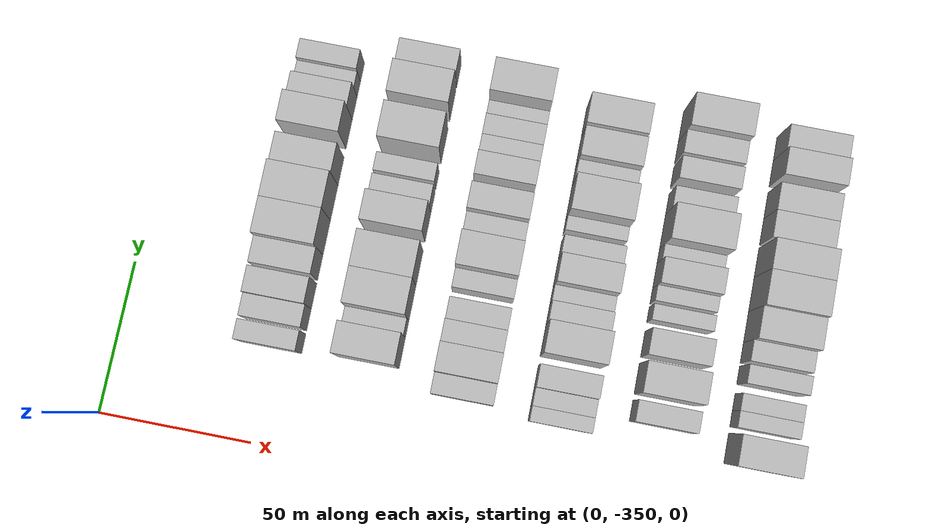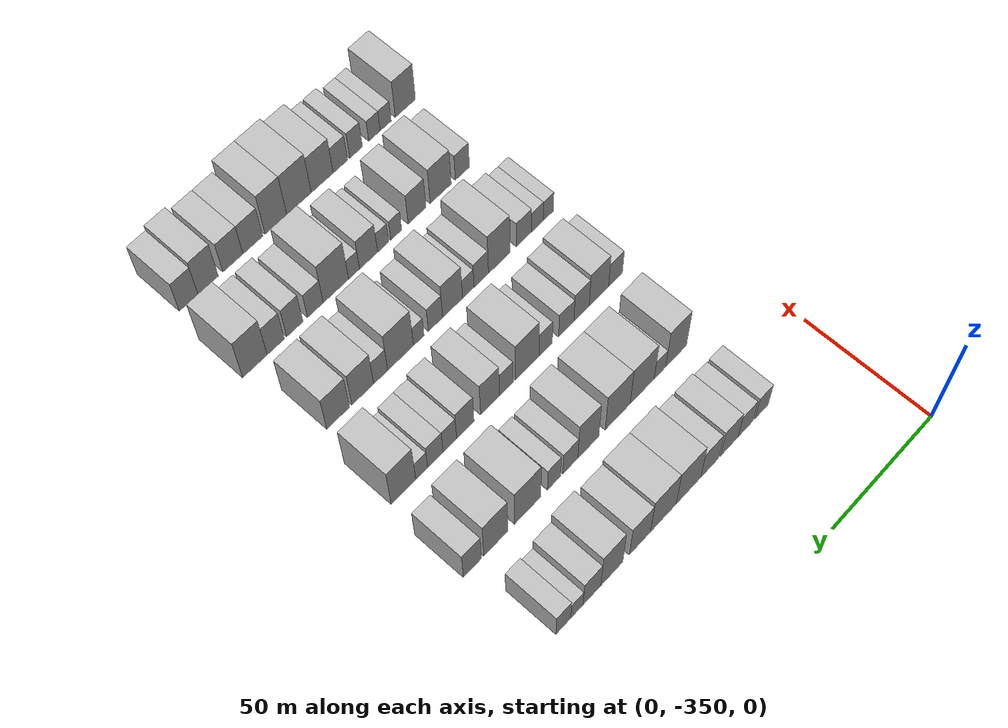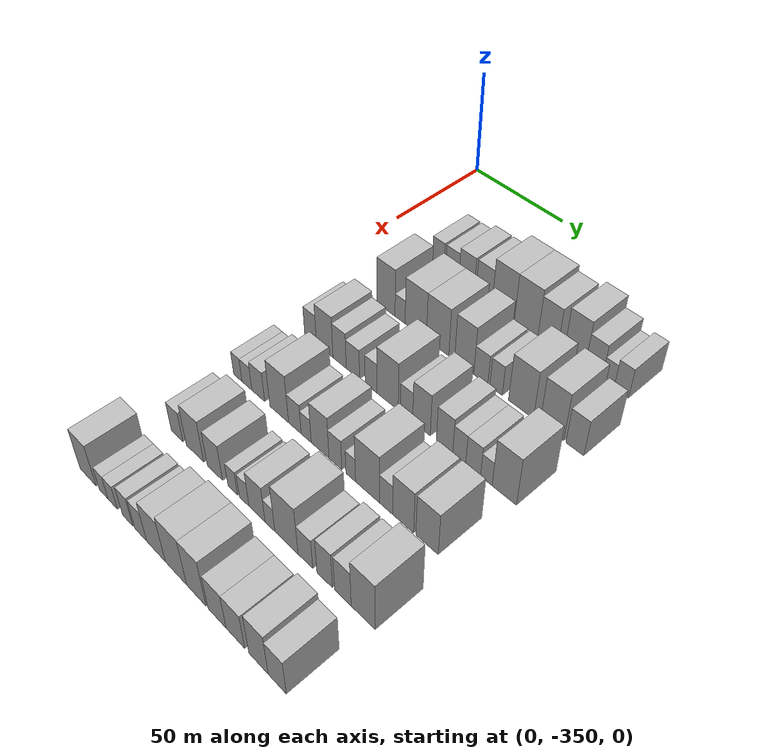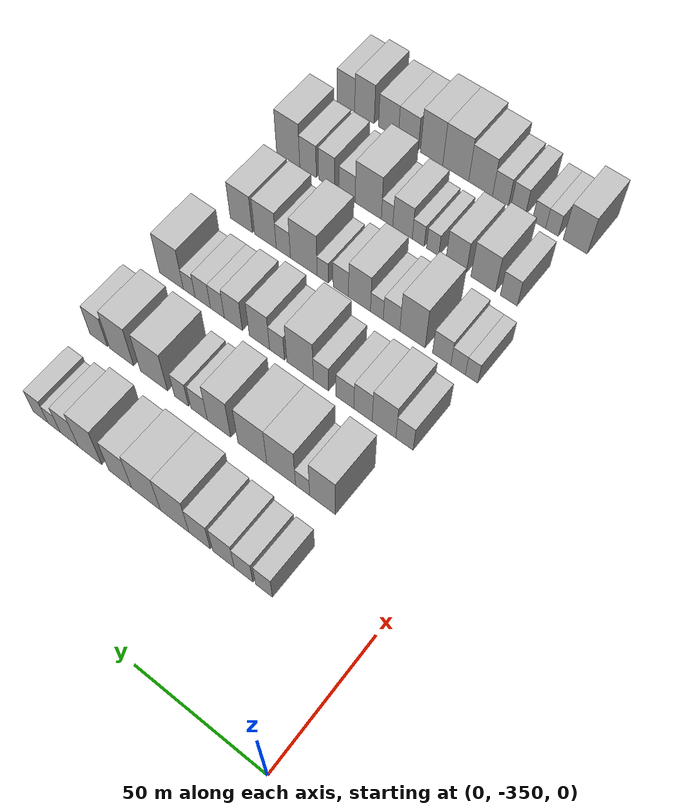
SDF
<sdf version="1.6">
 <world name="default">
  <model name="building_26">
   <static>1</static>
   <pose>50.0000 -315.5537 0 0.000000 0.000000 0.000000</pose>
   <link name="link">
    <pose>0 0 7.50 0 0 0</pose>
    <collision name="collision"><geometry><box><size>20.0000 6.5410 15.0000</size></box></geometry></collision>
    <visual name="visual">
     <cast_shadows>0</cast_shadows>
     <geometry><box><size>20.0000 6.5410 15.0000</size></box></geometry>
     <material>
      <script>
       <uri>model://HANNAS_wall/materials/scripts</uri>
       <uri>model://HANNAS_wall/materials/textures</uri>
       <name>vrc/HANNAS_wall</name>
      </script>
     </material>
    </visual>
   </link>
  </model>
  <model name="building_27">
   <static>1</static>
   <pose>50.0000 -307.6227 0 0.000000 0.000000 0.000000</pose>
   <link name="link">
    <pose>0 0 7.50 0 0 0</pose>
    <collision name="collision"><geometry><box><size>20.0000 7.3210 15.0000</size></box></geometry></collision>
    <visual name="visual">
     <cast_shadows>0</cast_shadows>
     <geometry><box><size>20.0000 7.3210 15.0000</size></box></geometry>
     <material>
      <script>
       <uri>model://HANNAS_wall/materials/scripts</uri>
       <uri>model://HANNAS_wall/materials/textures</uri>
       <name>vrc/HANNAS_wall</name>
      </script>
     </material>
    </visual>
   </link>
  </model>
  <model name="building_28">
   <static>1</static>
   <pose>50.0000 -299.7302 0 0.000000 0.000000 0.000000</pose>
   <link name="link">
    <pose>0 0 9.00 0 0 0</pose>
    <collision name="collision"><geometry><box><size>20.0000 8.4641 18.0000</size></box></geometry></collision>
    <visual name="visual">
     <cast_shadows>0</cast_shadows>
     <geometry><box><size>20.0000 8.4641 18.0000</size></box></geometry>
     <material>
      <script>
       <uri>model://HANNAS_wall/materials/scripts</uri>
       <uri>model://HANNAS_wall/materials/textures</uri>
       <name>vrc/HANNAS_wall</name>
      </script>
     </material>
    </visual>
   </link>
  </model>
  <model name="building_29">
   <static>1</static>
   <pose>50.0000 -290.2057 0 0.000000 0.000000 0.000000</pose>
   <link name="link">
    <pose>0 0 9.00 0 0 0</pose>
    <collision name="collision"><geometry><box><size>20.0000 8.5849 18.0000</size></box></geometry></collision>
    <visual name="visual">
     <cast_shadows>0</cast_shadows>
     <geometry><box><size>20.0000 8.5849 18.0000</size></box></geometry>
     <material>
      <script>
       <uri>model://HANNAS_wall/materials/scripts</uri>
       <uri>model://HANNAS_wall/materials/textures</uri>
       <name>vrc/HANNAS_wall</name>
      </script>
     </material>
    </visual>
   </link>
  </model>
  <model name="building_30">
   <static>1</static>
   <pose>50.0000 -280.0788 0 0.000000 0.000000 0.000000</pose>
   <link name="link">
    <pose>0 0 12.00 0 0 0</pose>
    <collision name="collision"><geometry><box><size>20.0000 11.6689 24.0000</size></box></geometry></collision>
    <visual name="visual">
     <cast_shadows>0</cast_shadows>
     <geometry><box><size>20.0000 11.6689 24.0000</size></box></geometry>
     <material>
      <script>
       <uri>model://HANNAS_wall/materials/scripts</uri>
       <uri>model://HANNAS_wall/materials/textures</uri>
       <name>vrc/HANNAS_wall</name>
      </script>
     </material>
    </visual>
   </link>
  </model>
  <model name="building_31">
   <static>1</static>
   <pose>50.0000 -268.2663 0 0.000000 0.000000 0.000000</pose>
   <link name="link">
    <pose>0 0 12.00 0 0 0</pose>
    <collision name="collision"><geometry><box><size>20.0000 11.9561 24.0000</size></box></geometry></collision>
    <visual name="visual">
     <cast_shadows>0</cast_shadows>
     <geometry><box><size>20.0000 11.9561 24.0000</size></box></geometry>
     <material>
      <script>
       <uri>model://HANNAS_wall/materials/scripts</uri>
       <uri>model://HANNAS_wall/materials/textures</uri>
       <name>vrc/HANNAS_wall</name>
      </script>
     </material>
    </visual>
   </link>
  </model>
  <model name="building_32">
   <static>1</static>
   <pose>50.0000 -257.4463 0 0.000000 0.000000 0.000000</pose>
   <link name="link">
    <pose>0 0 10.50 0 0 0</pose>
    <collision name="collision"><geometry><box><size>20.0000 9.6838 21.0000</size></box></geometry></collision>
    <visual name="visual">
     <cast_shadows>0</cast_shadows>
     <geometry><box><size>20.0000 9.6838 21.0000</size></box></geometry>
     <material>
      <script>
       <uri>model://HANNAS_wall/materials/scripts</uri>
       <uri>model://HANNAS_wall/materials/textures</uri>
       <name>vrc/HANNAS_wall</name>
      </script>
     </material>
    </visual>
   </link>
  </model>
  <model name="building_33">
   <static>1</static>
   <pose>50.0000 -244.5945 0 0.000000 0.000000 0.000000</pose>
   <link name="link">
    <pose>0 0 12.00 0 0 0</pose>
    <collision name="collision"><geometry><box><size>20.0000 10.0197 24.0000</size></box></geometry></collision>
    <visual name="visual">
     <cast_shadows>0</cast_shadows>
     <geometry><box><size>20.0000 10.0197 24.0000</size></box></geometry>
     <material>
      <script>
       <uri>model://HANNAS_wall/materials/scripts</uri>
       <uri>model://HANNAS_wall/materials/textures</uri>
       <name>vrc/HANNAS_wall</name>
      </script>
     </material>
    </visual>
   </link>
  </model>
  <model name="building_34">
   <static>1</static>
   <pose>50.0000 -235.6187 0 0.000000 0.000000 0.000000</pose>
   <link name="link">
    <pose>0 0 9.00 0 0 0</pose>
    <collision name="collision"><geometry><box><size>20.0000 7.9320 18.0000</size></box></geometry></collision>
    <visual name="visual">
     <cast_shadows>0</cast_shadows>
     <geometry><box><size>20.0000 7.9320 18.0000</size></box></geometry>
     <material>
      <script>
       <uri>model://HANNAS_wall/materials/scripts</uri>
       <uri>model://HANNAS_wall/materials/textures</uri>
       <name>vrc/HANNAS_wall</name>
      </script>
     </material>
    </visual>
   </link>
  </model>
  <model name="building_35">
   <static>1</static>
   <pose>50.0000 -228.9142 0 0.000000 0.000000 0.000000</pose>
   <link name="link">
    <pose>0 0 6.00 0 0 0</pose>
    <collision name="collision"><geometry><box><size>20.0000 5.4769 12.0000</size></box></geometry></collision>
    <visual name="visual">
     <cast_shadows>0</cast_shadows>
     <geometry><box><size>20.0000 5.4769 12.0000</size></box></geometry>
     <material>
      <script>
       <uri>model://HANNAS_wall/materials/scripts</uri>
       <uri>model://HANNAS_wall/materials/textures</uri>
       <name>vrc/HANNAS_wall</name>
      </script>
     </material>
    </visual>
   </link>
  </model>
  <model name="building_36">
   <static>1</static>
   <pose>50.0000 -222.9157 0 0.000000 0.000000 0.000000</pose>
   <link name="link">
    <pose>0 0 7.50 0 0 0</pose>
    <collision name="collision"><geometry><box><size>20.0000 6.5202 15.0000</size></box></geometry></collision>
    <visual name="visual">
     <cast_shadows>0</cast_shadows>
     <geometry><box><size>20.0000 6.5202 15.0000</size></box></geometry>
     <material>
      <script>
       <uri>model://HANNAS_wall/materials/scripts</uri>
       <uri>model://HANNAS_wall/materials/textures</uri>
       <name>vrc/HANNAS_wall</name>
      </script>
     </material>
    </visual>
   </link>
  </model>
  <model name="building_147">
   <static>1</static>
   <pose>82.0000 -312.4322 0 0.000000 0.000000 0.000000</pose>
   <link name="link">
    <pose>0 0 12.00 0 0 0</pose>
    <collision name="collision"><geometry><box><size>20.0000 10.1328 24.0000</size></box></geometry></collision>
    <visual name="visual">
     <cast_shadows>0</cast_shadows>
     <geometry><box><size>20.0000 10.1328 24.0000</size></box></geometry>
     <material>
      <script>
       <uri>model://HANNAS_wall/materials/scripts</uri>
       <uri>model://HANNAS_wall/materials/textures</uri>
       <name>vrc/HANNAS_wall</name>
      </script>
     </material>
    </visual>
   </link>
  </model>
  <model name="building_148">
   <static>1</static>
   <pose>82.0000 -304.5653 0 0.000000 0.000000 0.000000</pose>
   <link name="link">
    <pose>0 0 6.00 0 0 0</pose>
    <collision name="collision"><geometry><box><size>20.0000 5.6010 12.0000</size></box></geometry></collision>
    <visual name="visual">
     <cast_shadows>0</cast_shadows>
     <geometry><box><size>20.0000 5.6010 12.0000</size></box></geometry>
     <material>
      <script>
       <uri>model://HANNAS_wall/materials/scripts</uri>
       <uri>model://HANNAS_wall/materials/textures</uri>
       <name>vrc/HANNAS_wall</name>
      </script>
     </material>
    </visual>
   </link>
  </model>
  <model name="building_149">
   <static>1</static>
   <pose>82.0000 -295.9773 0 0.000000 0.000000 0.000000</pose>
   <link name="link">
    <pose>0 0 12.00 0 0 0</pose>
    <collision name="collision"><geometry><box><size>20.0000 11.5750 24.0000</size></box></geometry></collision>
    <visual name="visual">
     <cast_shadows>0</cast_shadows>
     <geometry><box><size>20.0000 11.5750 24.0000</size></box></geometry>
     <material>
      <script>
       <uri>model://HANNAS_wall/materials/scripts</uri>
       <uri>model://HANNAS_wall/materials/textures</uri>
       <name>vrc/HANNAS_wall</name>
      </script>
     </material>
    </visual>
   </link>
  </model>
  <model name="building_150">
   <static>1</static>
   <pose>82.0000 -284.2808 0 0.000000 0.000000 0.000000</pose>
   <link name="link">
    <pose>0 0 12.00 0 0 0</pose>
    <collision name="collision"><geometry><box><size>20.0000 11.8180 24.0000</size></box></geometry></collision>
    <visual name="visual">
     <cast_shadows>0</cast_shadows>
     <geometry><box><size>20.0000 11.8180 24.0000</size></box></geometry>
     <material>
      <script>
       <uri>model://HANNAS_wall/materials/scripts</uri>
       <uri>model://HANNAS_wall/materials/textures</uri>
       <name>vrc/HANNAS_wall</name>
      </script>
     </material>
    </visual>
   </link>
  </model>
  <model name="building_151">
   <static>1</static>
   <pose>82.0000 -270.4943 0 0.000000 0.000000 0.000000</pose>
   <link name="link">
    <pose>0 0 12.00 0 0 0</pose>
    <collision name="collision"><geometry><box><size>20.0000 9.7550 24.0000</size></box></geometry></collision>
    <visual name="visual">
     <cast_shadows>0</cast_shadows>
     <geometry><box><size>20.0000 9.7550 24.0000</size></box></geometry>
     <material>
      <script>
       <uri>model://HANNAS_wall/materials/scripts</uri>
       <uri>model://HANNAS_wall/materials/textures</uri>
       <name>vrc/HANNAS_wall</name>
      </script>
     </material>
    </visual>
   </link>
  </model>
  <model name="building_152">
   <static>1</static>
   <pose>82.0000 -262.1302 0 0.000000 0.000000 0.000000</pose>
   <link name="link">
    <pose>0 0 7.50 0 0 0</pose>
    <collision name="collision"><geometry><box><size>20.0000 6.9732 15.0000</size></box></geometry></collision>
    <visual name="visual">
     <cast_shadows>0</cast_shadows>
     <geometry><box><size>20.0000 6.9732 15.0000</size></box></geometry>
     <material>
      <script>
       <uri>model://HANNAS_wall/materials/scripts</uri>
       <uri>model://HANNAS_wall/materials/textures</uri>
       <name>vrc/HANNAS_wall</name>
      </script>
     </material>
    </visual>
   </link>
  </model>
  <model name="building_153">
   <static>1</static>
   <pose>82.0000 -254.6178 0 0.000000 0.000000 0.000000</pose>
   <link name="link">
    <pose>0 0 7.50 0 0 0</pose>
    <collision name="collision"><geometry><box><size>20.0000 6.0515 15.0000</size></box></geometry></collision>
    <visual name="visual">
     <cast_shadows>0</cast_shadows>
     <geometry><box><size>20.0000 6.0515 15.0000</size></box></geometry>
     <material>
      <script>
       <uri>model://HANNAS_wall/materials/scripts</uri>
       <uri>model://HANNAS_wall/materials/textures</uri>
       <name>vrc/HANNAS_wall</name>
      </script>
     </material>
    </visual>
   </link>
  </model>
  <model name="building_154">
   <static>1</static>
   <pose>82.0000 -242.6859 0 0.000000 0.000000 0.000000</pose>
   <link name="link">
    <pose>0 0 12.00 0 0 0</pose>
    <collision name="collision"><geometry><box><size>20.0000 11.8123 24.0000</size></box></geometry></collision>
    <visual name="visual">
     <cast_shadows>0</cast_shadows>
     <geometry><box><size>20.0000 11.8123 24.0000</size></box></geometry>
     <material>
      <script>
       <uri>model://HANNAS_wall/materials/scripts</uri>
       <uri>model://HANNAS_wall/materials/textures</uri>
       <name>vrc/HANNAS_wall</name>
      </script>
     </material>
    </visual>
   </link>
  </model>
  <model name="building_155">
   <static>1</static>
   <pose>82.0000 -228.4300 0 0.000000 0.000000 0.000000</pose>
   <link name="link">
    <pose>0 0 12.00 0 0 0</pose>
    <collision name="collision"><geometry><box><size>20.0000 10.6995 24.0000</size></box></geometry></collision>
    <visual name="visual">
     <cast_shadows>0</cast_shadows>
     <geometry><box><size>20.0000 10.6995 24.0000</size></box></geometry>
     <material>
      <script>
       <uri>model://HANNAS_wall/materials/scripts</uri>
       <uri>model://HANNAS_wall/materials/textures</uri>
       <name>vrc/HANNAS_wall</name>
      </script>
     </material>
    </visual>
   </link>
  </model>
  <model name="building_156">
   <static>1</static>
   <pose>82.0000 -218.1196 0 0.000000 0.000000 0.000000</pose>
   <link name="link">
    <pose>0 0 9.00 0 0 0</pose>
    <collision name="collision"><geometry><box><size>20.0000 7.9213 18.0000</size></box></geometry></collision>
    <visual name="visual">
     <cast_shadows>0</cast_shadows>
     <geometry><box><size>20.0000 7.9213 18.0000</size></box></geometry>
     <material>
      <script>
       <uri>model://HANNAS_wall/materials/scripts</uri>
       <uri>model://HANNAS_wall/materials/textures</uri>
       <name>vrc/HANNAS_wall</name>
      </script>
     </material>
    </visual>
   </link>
  </model>
  <model name="building_259">
   <static>1</static>
   <pose>114.0000 -320.1308 0 0.000000 0.000000 0.000000</pose>
   <link name="link">
    <pose>0 0 7.50 0 0 0</pose>
    <collision name="collision"><geometry><box><size>20.0000 6.7972 15.0000</size></box></geometry></collision>
    <visual name="visual">
     <cast_shadows>0</cast_shadows>
     <geometry><box><size>20.0000 6.7972 15.0000</size></box></geometry>
     <material>
      <script>
       <uri>model://HANNAS_wall/materials/scripts</uri>
       <uri>model://HANNAS_wall/materials/textures</uri>
       <name>vrc/HANNAS_wall</name>
      </script>
     </material>
    </visual>
   </link>
  </model>
  <model name="building_260">
   <static>1</static>
   <pose>114.0000 -312.0035 0 0.000000 0.000000 0.000000</pose>
   <link name="link">
    <pose>0 0 10.50 0 0 0</pose>
    <collision name="collision"><geometry><box><size>20.0000 9.4574 21.0000</size></box></geometry></collision>
    <visual name="visual">
     <cast_shadows>0</cast_shadows>
     <geometry><box><size>20.0000 9.4574 21.0000</size></box></geometry>
     <material>
      <script>
       <uri>model://HANNAS_wall/materials/scripts</uri>
       <uri>model://HANNAS_wall/materials/textures</uri>
       <name>vrc/HANNAS_wall</name>
      </script>
     </material>
    </visual>
   </link>
  </model>
  <model name="building_261">
   <static>1</static>
   <pose>114.0000 -303.6046 0 0.000000 0.000000 0.000000</pose>
   <link name="link">
    <pose>0 0 9.00 0 0 0</pose>
    <collision name="collision"><geometry><box><size>20.0000 7.3402 18.0000</size></box></geometry></collision>
    <visual name="visual">
     <cast_shadows>0</cast_shadows>
     <geometry><box><size>20.0000 7.3402 18.0000</size></box></geometry>
     <material>
      <script>
       <uri>model://HANNAS_wall/materials/scripts</uri>
       <uri>model://HANNAS_wall/materials/textures</uri>
       <name>vrc/HANNAS_wall</name>
      </script>
     </material>
    </visual>
   </link>
  </model>
  <model name="building_262">
   <static>1</static>
   <pose>114.0000 -296.2754 0 0.000000 0.000000 0.000000</pose>
   <link name="link">
    <pose>0 0 7.50 0 0 0</pose>
    <collision name="collision"><geometry><box><size>20.0000 7.3182 15.0000</size></box></geometry></collision>
    <visual name="visual">
     <cast_shadows>0</cast_shadows>
     <geometry><box><size>20.0000 7.3182 15.0000</size></box></geometry>
     <material>
      <script>
       <uri>model://HANNAS_wall/materials/scripts</uri>
       <uri>model://HANNAS_wall/materials/textures</uri>
       <name>vrc/HANNAS_wall</name>
      </script>
     </material>
    </visual>
   </link>
  </model>
  <model name="building_263">
   <static>1</static>
   <pose>114.0000 -286.4926 0 0.000000 0.000000 0.000000</pose>
   <link name="link">
    <pose>0 0 7.50 0 0 0</pose>
    <collision name="collision"><geometry><box><size>20.0000 6.2475 15.0000</size></box></geometry></collision>
    <visual name="visual">
     <cast_shadows>0</cast_shadows>
     <geometry><box><size>20.0000 6.2475 15.0000</size></box></geometry>
     <material>
      <script>
       <uri>model://HANNAS_wall/materials/scripts</uri>
       <uri>model://HANNAS_wall/materials/textures</uri>
       <name>vrc/HANNAS_wall</name>
      </script>
     </material>
    </visual>
   </link>
  </model>
  <model name="building_264">
   <static>1</static>
   <pose>114.0000 -277.8136 0 0.000000 0.000000 0.000000</pose>
   <link name="link">
    <pose>0 0 12.00 0 0 0</pose>
    <collision name="collision"><geometry><box><size>20.0000 11.1104 24.0000</size></box></geometry></collision>
    <visual name="visual">
     <cast_shadows>0</cast_shadows>
     <geometry><box><size>20.0000 11.1104 24.0000</size></box></geometry>
     <material>
      <script>
       <uri>model://HANNAS_wall/materials/scripts</uri>
       <uri>model://HANNAS_wall/materials/textures</uri>
       <name>vrc/HANNAS_wall</name>
      </script>
     </material>
    </visual>
   </link>
  </model>
  <model name="building_265">
   <static>1</static>
   <pose>114.0000 -268.0980 0 0.000000 0.000000 0.000000</pose>
   <link name="link">
    <pose>0 0 7.50 0 0 0</pose>
    <collision name="collision"><geometry><box><size>20.0000 6.3209 15.0000</size></box></geometry></collision>
    <visual name="visual">
     <cast_shadows>0</cast_shadows>
     <geometry><box><size>20.0000 6.3209 15.0000</size></box></geometry>
     <material>
      <script>
       <uri>model://HANNAS_wall/materials/scripts</uri>
       <uri>model://HANNAS_wall/materials/textures</uri>
       <name>vrc/HANNAS_wall</name>
      </script>
     </material>
    </visual>
   </link>
  </model>
  <model name="building_266">
   <static>1</static>
   <pose>114.0000 -260.5856 0 0.000000 0.000000 0.000000</pose>
   <link name="link">
    <pose>0 0 10.50 0 0 0</pose>
    <collision name="collision"><geometry><box><size>20.0000 8.7037 21.0000</size></box></geometry></collision>
    <visual name="visual">
     <cast_shadows>0</cast_shadows>
     <geometry><box><size>20.0000 8.7037 21.0000</size></box></geometry>
     <material>
      <script>
       <uri>model://HANNAS_wall/materials/scripts</uri>
       <uri>model://HANNAS_wall/materials/textures</uri>
       <name>vrc/HANNAS_wall</name>
      </script>
     </material>
    </visual>
   </link>
  </model>
  <model name="building_267">
   <static>1</static>
   <pose>114.0000 -249.3025 0 0.000000 0.000000 0.000000</pose>
   <link name="link">
    <pose>0 0 9.00 0 0 0</pose>
    <collision name="collision"><geometry><box><size>20.0000 7.8626 18.0000</size></box></geometry></collision>
    <visual name="visual">
     <cast_shadows>0</cast_shadows>
     <geometry><box><size>20.0000 7.8626 18.0000</size></box></geometry>
     <material>
      <script>
       <uri>model://HANNAS_wall/materials/scripts</uri>
       <uri>model://HANNAS_wall/materials/textures</uri>
       <name>vrc/HANNAS_wall</name>
      </script>
     </material>
    </visual>
   </link>
  </model>
  <model name="building_268">
   <static>1</static>
   <pose>114.0000 -242.3262 0 0.000000 0.000000 0.000000</pose>
   <link name="link">
    <pose>0 0 7.50 0 0 0</pose>
    <collision name="collision"><geometry><box><size>20.0000 6.0900 15.0000</size></box></geometry></collision>
    <visual name="visual">
     <cast_shadows>0</cast_shadows>
     <geometry><box><size>20.0000 6.0900 15.0000</size></box></geometry>
     <material>
      <script>
       <uri>model://HANNAS_wall/materials/scripts</uri>
       <uri>model://HANNAS_wall/materials/textures</uri>
       <name>vrc/HANNAS_wall</name>
      </script>
     </material>
    </visual>
   </link>
  </model>
  <model name="building_269">
   <static>1</static>
   <pose>114.0000 -235.8635 0 0.000000 0.000000 0.000000</pose>
   <link name="link">
    <pose>0 0 7.50 0 0 0</pose>
    <collision name="collision"><geometry><box><size>20.0000 6.8353 15.0000</size></box></geometry></collision>
    <visual name="visual">
     <cast_shadows>0</cast_shadows>
     <geometry><box><size>20.0000 6.8353 15.0000</size></box></geometry>
     <material>
      <script>
       <uri>model://HANNAS_wall/materials/scripts</uri>
       <uri>model://HANNAS_wall/materials/textures</uri>
       <name>vrc/HANNAS_wall</name>
      </script>
     </material>
    </visual>
   </link>
  </model>
  <model name="building_270">
   <static>1</static>
   <pose>114.0000 -229.8049 0 0.000000 0.000000 0.000000</pose>
   <link name="link">
    <pose>0 0 6.00 0 0 0</pose>
    <collision name="collision"><geometry><box><size>20.0000 5.2819 12.0000</size></box></geometry></collision>
    <visual name="visual">
     <cast_shadows>0</cast_shadows>
     <geometry><box><size>20.0000 5.2819 12.0000</size></box></geometry>
     <material>
      <script>
       <uri>model://HANNAS_wall/materials/scripts</uri>
       <uri>model://HANNAS_wall/materials/textures</uri>
       <name>vrc/HANNAS_wall</name>
      </script>
     </material>
    </visual>
   </link>
  </model>
  <model name="building_271">
   <static>1</static>
   <pose>114.0000 -221.7602 0 0.000000 0.000000 0.000000</pose>
   <link name="link">
    <pose>0 0 12.00 0 0 0</pose>
    <collision name="collision"><geometry><box><size>20.0000 10.8076 24.0000</size></box></geometry></collision>
    <visual name="visual">
     <cast_shadows>0</cast_shadows>
     <geometry><box><size>20.0000 10.8076 24.0000</size></box></geometry>
     <material>
      <script>
       <uri>model://HANNAS_wall/materials/scripts</uri>
       <uri>model://HANNAS_wall/materials/textures</uri>
       <name>vrc/HANNAS_wall</name>
      </script>
     </material>
    </visual>
   </link>
  </model>
  <model name="building_380">
   <static>1</static>
   <pose>146.0000 -323.5174 0 0.000000 0.000000 0.000000</pose>
   <link name="link">
    <pose>0 0 6.00 0 0 0</pose>
    <collision name="collision"><geometry><box><size>20.0000 4.9330 12.0000</size></box></geometry></collision>
    <visual name="visual">
     <cast_shadows>0</cast_shadows>
     <geometry><box><size>20.0000 4.9330 12.0000</size></box></geometry>
     <material>
      <script>
       <uri>model://HANNAS_wall/materials/scripts</uri>
       <uri>model://HANNAS_wall/materials/textures</uri>
       <name>vrc/HANNAS_wall</name>
      </script>
     </material>
    </visual>
   </link>
  </model>
  <model name="building_381">
   <static>1</static>
   <pose>146.0000 -318.1522 0 0.000000 0.000000 0.000000</pose>
   <link name="link">
    <pose>0 0 6.00 0 0 0</pose>
    <collision name="collision"><geometry><box><size>20.0000 5.7976 12.0000</size></box></geometry></collision>
    <visual name="visual">
     <cast_shadows>0</cast_shadows>
     <geometry><box><size>20.0000 5.7976 12.0000</size></box></geometry>
     <material>
      <script>
       <uri>model://HANNAS_wall/materials/scripts</uri>
       <uri>model://HANNAS_wall/materials/textures</uri>
       <name>vrc/HANNAS_wall</name>
      </script>
     </material>
    </visual>
   </link>
  </model>
  <model name="building_382">
   <static>1</static>
   <pose>146.0000 -311.5566 0 0.000000 0.000000 0.000000</pose>
   <link name="link">
    <pose>0 0 7.50 0 0 0</pose>
    <collision name="collision"><geometry><box><size>20.0000 7.3936 15.0000</size></box></geometry></collision>
    <visual name="visual">
     <cast_shadows>0</cast_shadows>
     <geometry><box><size>20.0000 7.3936 15.0000</size></box></geometry>
     <material>
      <script>
       <uri>model://HANNAS_wall/materials/scripts</uri>
       <uri>model://HANNAS_wall/materials/textures</uri>
       <name>vrc/HANNAS_wall</name>
      </script>
     </material>
    </visual>
   </link>
  </model>
  <model name="building_383">
   <static>1</static>
   <pose>146.0000 -299.6674 0 0.000000 0.000000 0.000000</pose>
   <link name="link">
    <pose>0 0 12.00 0 0 0</pose>
    <collision name="collision"><geometry><box><size>20.0000 10.3847 24.0000</size></box></geometry></collision>
    <visual name="visual">
     <cast_shadows>0</cast_shadows>
     <geometry><box><size>20.0000 10.3847 24.0000</size></box></geometry>
     <material>
      <script>
       <uri>model://HANNAS_wall/materials/scripts</uri>
       <uri>model://HANNAS_wall/materials/textures</uri>
       <name>vrc/HANNAS_wall</name>
      </script>
     </material>
    </visual>
   </link>
  </model>
  <model name="building_384">
   <static>1</static>
   <pose>146.0000 -291.0367 0 0.000000 0.000000 0.000000</pose>
   <link name="link">
    <pose>0 0 7.50 0 0 0</pose>
    <collision name="collision"><geometry><box><size>20.0000 6.8768 15.0000</size></box></geometry></collision>
    <visual name="visual">
     <cast_shadows>0</cast_shadows>
     <geometry><box><size>20.0000 6.8768 15.0000</size></box></geometry>
     <material>
      <script>
       <uri>model://HANNAS_wall/materials/scripts</uri>
       <uri>model://HANNAS_wall/materials/textures</uri>
       <name>vrc/HANNAS_wall</name>
      </script>
     </material>
    </visual>
   </link>
  </model>
  <model name="building_385">
   <static>1</static>
   <pose>146.0000 -284.9132 0 0.000000 0.000000 0.000000</pose>
   <link name="link">
    <pose>0 0 6.00 0 0 0</pose>
    <collision name="collision"><geometry><box><size>20.0000 5.3702 12.0000</size></box></geometry></collision>
    <visual name="visual">
     <cast_shadows>0</cast_shadows>
     <geometry><box><size>20.0000 5.3702 12.0000</size></box></geometry>
     <material>
      <script>
       <uri>model://HANNAS_wall/materials/scripts</uri>
       <uri>model://HANNAS_wall/materials/textures</uri>
       <name>vrc/HANNAS_wall</name>
      </script>
     </material>
    </visual>
   </link>
  </model>
  <model name="building_386">
   <static>1</static>
   <pose>146.0000 -277.5852 0 0.000000 0.000000 0.000000</pose>
   <link name="link">
    <pose>0 0 10.50 0 0 0</pose>
    <collision name="collision"><geometry><box><size>20.0000 9.2857 21.0000</size></box></geometry></collision>
    <visual name="visual">
     <cast_shadows>0</cast_shadows>
     <geometry><box><size>20.0000 9.2857 21.0000</size></box></geometry>
     <material>
      <script>
       <uri>model://HANNAS_wall/materials/scripts</uri>
       <uri>model://HANNAS_wall/materials/textures</uri>
       <name>vrc/HANNAS_wall</name>
      </script>
     </material>
    </visual>
   </link>
  </model>
  <model name="building_387">
   <static>1</static>
   <pose>146.0000 -269.6390 0 0.000000 0.000000 0.000000</pose>
   <link name="link">
    <pose>0 0 7.50 0 0 0</pose>
    <collision name="collision"><geometry><box><size>20.0000 6.6068 15.0000</size></box></geometry></collision>
    <visual name="visual">
     <cast_shadows>0</cast_shadows>
     <geometry><box><size>20.0000 6.6068 15.0000</size></box></geometry>
     <material>
      <script>
       <uri>model://HANNAS_wall/materials/scripts</uri>
       <uri>model://HANNAS_wall/materials/textures</uri>
       <name>vrc/HANNAS_wall</name>
      </script>
     </material>
    </visual>
   </link>
  </model>
  <model name="building_388">
   <static>1</static>
   <pose>146.0000 -261.9287 0 0.000000 0.000000 0.000000</pose>
   <link name="link">
    <pose>0 0 6.00 0 0 0</pose>
    <collision name="collision"><geometry><box><size>20.0000 4.8138 12.0000</size></box></geometry></collision>
    <visual name="visual">
     <cast_shadows>0</cast_shadows>
     <geometry><box><size>20.0000 4.8138 12.0000</size></box></geometry>
     <material>
      <script>
       <uri>model://HANNAS_wall/materials/scripts</uri>
       <uri>model://HANNAS_wall/materials/textures</uri>
       <name>vrc/HANNAS_wall</name>
      </script>
     </material>
    </visual>
   </link>
  </model>
  <model name="building_389">
   <static>1</static>
   <pose>146.0000 -253.6525 0 0.000000 0.000000 0.000000</pose>
   <link name="link">
    <pose>0 0 12.00 0 0 0</pose>
    <collision name="collision"><geometry><box><size>20.0000 11.7385 24.0000</size></box></geometry></collision>
    <visual name="visual">
     <cast_shadows>0</cast_shadows>
     <geometry><box><size>20.0000 11.7385 24.0000</size></box></geometry>
     <material>
      <script>
       <uri>model://HANNAS_wall/materials/scripts</uri>
       <uri>model://HANNAS_wall/materials/textures</uri>
       <name>vrc/HANNAS_wall</name>
      </script>
     </material>
    </visual>
   </link>
  </model>
  <model name="building_390">
   <static>1</static>
   <pose>146.0000 -244.6419 0 0.000000 0.000000 0.000000</pose>
   <link name="link">
    <pose>0 0 7.50 0 0 0</pose>
    <collision name="collision"><geometry><box><size>20.0000 6.2828 15.0000</size></box></geometry></collision>
    <visual name="visual">
     <cast_shadows>0</cast_shadows>
     <geometry><box><size>20.0000 6.2828 15.0000</size></box></geometry>
     <material>
      <script>
       <uri>model://HANNAS_wall/materials/scripts</uri>
       <uri>model://HANNAS_wall/materials/textures</uri>
       <name>vrc/HANNAS_wall</name>
      </script>
     </material>
    </visual>
   </link>
  </model>
  <model name="building_391">
   <static>1</static>
   <pose>146.0000 -236.6461 0 0.000000 0.000000 0.000000</pose>
   <link name="link">
    <pose>0 0 10.50 0 0 0</pose>
    <collision name="collision"><geometry><box><size>20.0000 9.7087 21.0000</size></box></geometry></collision>
    <visual name="visual">
     <cast_shadows>0</cast_shadows>
     <geometry><box><size>20.0000 9.7087 21.0000</size></box></geometry>
     <material>
      <script>
       <uri>model://HANNAS_wall/materials/scripts</uri>
       <uri>model://HANNAS_wall/materials/textures</uri>
       <name>vrc/HANNAS_wall</name>
      </script>
     </material>
    </visual>
   </link>
  </model>
  <model name="building_392">
   <static>1</static>
   <pose>146.0000 -225.7712 0 0.000000 0.000000 0.000000</pose>
   <link name="link">
    <pose>0 0 10.50 0 0 0</pose>
    <collision name="collision"><geometry><box><size>20.0000 10.0412 21.0000</size></box></geometry></collision>
    <visual name="visual">
     <cast_shadows>0</cast_shadows>
     <geometry><box><size>20.0000 10.0412 21.0000</size></box></geometry>
     <material>
      <script>
       <uri>model://HANNAS_wall/materials/scripts</uri>
       <uri>model://HANNAS_wall/materials/textures</uri>
       <name>vrc/HANNAS_wall</name>
      </script>
     </material>
    </visual>
   </link>
  </model>
  <model name="building_500">
   <static>1</static>
   <pose>178.0000 -316.3403 0 0.000000 0.000000 0.000000</pose>
   <link name="link">
    <pose>0 0 7.50 0 0 0</pose>
    <collision name="collision"><geometry><box><size>20.0000 6.8605 15.0000</size></box></geometry></collision>
    <visual name="visual">
     <cast_shadows>0</cast_shadows>
     <geometry><box><size>20.0000 6.8605 15.0000</size></box></geometry>
     <material>
      <script>
       <uri>model://HANNAS_wall/materials/scripts</uri>
       <uri>model://HANNAS_wall/materials/textures</uri>
       <name>vrc/HANNAS_wall</name>
      </script>
     </material>
    </visual>
   </link>
  </model>
  <model name="building_501">
   <static>1</static>
   <pose>178.0000 -305.8639 0 0.000000 0.000000 0.000000</pose>
   <link name="link">
    <pose>0 0 10.50 0 0 0</pose>
    <collision name="collision"><geometry><box><size>20.0000 10.0923 21.0000</size></box></geometry></collision>
    <visual name="visual">
     <cast_shadows>0</cast_shadows>
     <geometry><box><size>20.0000 10.0923 21.0000</size></box></geometry>
     <material>
      <script>
       <uri>model://HANNAS_wall/materials/scripts</uri>
       <uri>model://HANNAS_wall/materials/textures</uri>
       <name>vrc/HANNAS_wall</name>
      </script>
     </material>
    </visual>
   </link>
  </model>
  <model name="building_502">
   <static>1</static>
   <pose>178.0000 -294.5640 0 0.000000 0.000000 0.000000</pose>
   <link name="link">
    <pose>0 0 9.00 0 0 0</pose>
    <collision name="collision"><geometry><box><size>20.0000 8.5076 18.0000</size></box></geometry></collision>
    <visual name="visual">
     <cast_shadows>0</cast_shadows>
     <geometry><box><size>20.0000 8.5076 18.0000</size></box></geometry>
     <material>
      <script>
       <uri>model://HANNAS_wall/materials/scripts</uri>
       <uri>model://HANNAS_wall/materials/textures</uri>
       <name>vrc/HANNAS_wall</name>
      </script>
     </material>
    </visual>
   </link>
  </model>
  <model name="building_503">
   <static>1</static>
   <pose>178.0000 -284.7288 0 0.000000 0.000000 0.000000</pose>
   <link name="link">
    <pose>0 0 6.00 0 0 0</pose>
    <collision name="collision"><geometry><box><size>20.0000 5.1629 12.0000</size></box></geometry></collision>
    <visual name="visual">
     <cast_shadows>0</cast_shadows>
     <geometry><box><size>20.0000 5.1629 12.0000</size></box></geometry>
     <material>
      <script>
       <uri>model://HANNAS_wall/materials/scripts</uri>
       <uri>model://HANNAS_wall/materials/textures</uri>
       <name>vrc/HANNAS_wall</name>
      </script>
     </material>
    </visual>
   </link>
  </model>
  <model name="building_504">
   <static>1</static>
   <pose>178.0000 -278.5948 0 0.000000 0.000000 0.000000</pose>
   <link name="link">
    <pose>0 0 6.00 0 0 0</pose>
    <collision name="collision"><geometry><box><size>20.0000 5.1050 12.0000</size></box></geometry></collision>
    <visual name="visual">
     <cast_shadows>0</cast_shadows>
     <geometry><box><size>20.0000 5.1050 12.0000</size></box></geometry>
     <material>
      <script>
       <uri>model://HANNAS_wall/materials/scripts</uri>
       <uri>model://HANNAS_wall/materials/textures</uri>
       <name>vrc/HANNAS_wall</name>
      </script>
     </material>
    </visual>
   </link>
  </model>
  <model name="building_505">
   <static>1</static>
   <pose>178.0000 -271.8500 0 0.000000 0.000000 0.000000</pose>
   <link name="link">
    <pose>0 0 9.00 0 0 0</pose>
    <collision name="collision"><geometry><box><size>20.0000 8.3847 18.0000</size></box></geometry></collision>
    <visual name="visual">
     <cast_shadows>0</cast_shadows>
     <geometry><box><size>20.0000 8.3847 18.0000</size></box></geometry>
     <material>
      <script>
       <uri>model://HANNAS_wall/materials/scripts</uri>
       <uri>model://HANNAS_wall/materials/textures</uri>
       <name>vrc/HANNAS_wall</name>
      </script>
     </material>
    </visual>
   </link>
  </model>
  <model name="building_506">
   <static>1</static>
   <pose>178.0000 -265.1511 0 0.000000 0.000000 0.000000</pose>
   <link name="link">
    <pose>0 0 6.00 0 0 0</pose>
    <collision name="collision"><geometry><box><size>20.0000 5.0131 12.0000</size></box></geometry></collision>
    <visual name="visual">
     <cast_shadows>0</cast_shadows>
     <geometry><box><size>20.0000 5.0131 12.0000</size></box></geometry>
     <material>
      <script>
       <uri>model://HANNAS_wall/materials/scripts</uri>
       <uri>model://HANNAS_wall/materials/textures</uri>
       <name>vrc/HANNAS_wall</name>
      </script>
     </material>
    </visual>
   </link>
  </model>
  <model name="building_507">
   <static>1</static>
   <pose>178.0000 -256.8852 0 0.000000 0.000000 0.000000</pose>
   <link name="link">
    <pose>0 0 12.00 0 0 0</pose>
    <collision name="collision"><geometry><box><size>20.0000 11.5188 24.0000</size></box></geometry></collision>
    <visual name="visual">
     <cast_shadows>0</cast_shadows>
     <geometry><box><size>20.0000 11.5188 24.0000</size></box></geometry>
     <material>
      <script>
       <uri>model://HANNAS_wall/materials/scripts</uri>
       <uri>model://HANNAS_wall/materials/textures</uri>
       <name>vrc/HANNAS_wall</name>
      </script>
     </material>
    </visual>
   </link>
  </model>
  <model name="building_508">
   <static>1</static>
   <pose>178.0000 -247.5629 0 0.000000 0.000000 0.000000</pose>
   <link name="link">
    <pose>0 0 7.50 0 0 0</pose>
    <collision name="collision"><geometry><box><size>20.0000 7.1257 15.0000</size></box></geometry></collision>
    <visual name="visual">
     <cast_shadows>0</cast_shadows>
     <geometry><box><size>20.0000 7.1257 15.0000</size></box></geometry>
     <material>
      <script>
       <uri>model://HANNAS_wall/materials/scripts</uri>
       <uri>model://HANNAS_wall/materials/textures</uri>
       <name>vrc/HANNAS_wall</name>
      </script>
     </material>
    </visual>
   </link>
  </model>
  <model name="building_509">
   <static>1</static>
   <pose>178.0000 -238.3629 0 0.000000 0.000000 0.000000</pose>
   <link name="link">
    <pose>0 0 9.00 0 0 0</pose>
    <collision name="collision"><geometry><box><size>20.0000 7.2742 18.0000</size></box></geometry></collision>
    <visual name="visual">
     <cast_shadows>0</cast_shadows>
     <geometry><box><size>20.0000 7.2742 18.0000</size></box></geometry>
     <material>
      <script>
       <uri>model://HANNAS_wall/materials/scripts</uri>
       <uri>model://HANNAS_wall/materials/textures</uri>
       <name>vrc/HANNAS_wall</name>
      </script>
     </material>
    </visual>
   </link>
  </model>
  <model name="building_510">
   <static>1</static>
   <pose>178.0000 -229.9313 0 0.000000 0.000000 0.000000</pose>
   <link name="link">
    <pose>0 0 9.00 0 0 0</pose>
    <collision name="collision"><geometry><box><size>20.0000 7.5891 18.0000</size></box></geometry></collision>
    <visual name="visual">
     <cast_shadows>0</cast_shadows>
     <geometry><box><size>20.0000 7.5891 18.0000</size></box></geometry>
     <material>
      <script>
       <uri>model://HANNAS_wall/materials/scripts</uri>
       <uri>model://HANNAS_wall/materials/textures</uri>
       <name>vrc/HANNAS_wall</name>
      </script>
     </material>
    </visual>
   </link>
  </model>
  <model name="building_511">
   <static>1</static>
   <pose>178.0000 -220.7834 0 0.000000 0.000000 0.000000</pose>
   <link name="link">
    <pose>0 0 12.00 0 0 0</pose>
    <collision name="collision"><geometry><box><size>20.0000 10.7067 24.0000</size></box></geometry></collision>
    <visual name="visual">
     <cast_shadows>0</cast_shadows>
     <geometry><box><size>20.0000 10.7067 24.0000</size></box></geometry>
     <material>
      <script>
       <uri>model://HANNAS_wall/materials/scripts</uri>
       <uri>model://HANNAS_wall/materials/textures</uri>
       <name>vrc/HANNAS_wall</name>
      </script>
     </material>
    </visual>
   </link>
  </model>
  <model name="building_619">
   <static>1</static>
   <pose>210.0000 -322.2235 0 0.000000 0.000000 0.000000</pose>
   <link name="link">
    <pose>0 0 10.50 0 0 0</pose>
    <collision name="collision"><geometry><box><size>20.0000 9.8268 21.0000</size></box></geometry></collision>
    <visual name="visual">
     <cast_shadows>0</cast_shadows>
     <geometry><box><size>20.0000 9.8268 21.0000</size></box></geometry>
     <material>
      <script>
       <uri>model://HANNAS_wall/materials/scripts</uri>
       <uri>model://HANNAS_wall/materials/textures</uri>
       <name>vrc/HANNAS_wall</name>
      </script>
     </material>
    </visual>
   </link>
  </model>
  <model name="building_620">
   <static>1</static>
   <pose>210.0000 -312.6661 0 0.000000 0.000000 0.000000</pose>
   <link name="link">
    <pose>0 0 6.00 0 0 0</pose>
    <collision name="collision"><geometry><box><size>20.0000 5.2880 12.0000</size></box></geometry></collision>
    <visual name="visual">
     <cast_shadows>0</cast_shadows>
     <geometry><box><size>20.0000 5.2880 12.0000</size></box></geometry>
     <material>
      <script>
       <uri>model://HANNAS_wall/materials/scripts</uri>
       <uri>model://HANNAS_wall/materials/textures</uri>
       <name>vrc/HANNAS_wall</name>
      </script>
     </material>
    </visual>
   </link>
  </model>
  <model name="building_621">
   <static>1</static>
   <pose>210.0000 -307.2638 0 0.000000 0.000000 0.000000</pose>
   <link name="link">
    <pose>0 0 6.00 0 0 0</pose>
    <collision name="collision"><geometry><box><size>20.0000 5.5166 12.0000</size></box></geometry></collision>
    <visual name="visual">
     <cast_shadows>0</cast_shadows>
     <geometry><box><size>20.0000 5.5166 12.0000</size></box></geometry>
     <material>
      <script>
       <uri>model://HANNAS_wall/materials/scripts</uri>
       <uri>model://HANNAS_wall/materials/textures</uri>
       <name>vrc/HANNAS_wall</name>
      </script>
     </material>
    </visual>
   </link>
  </model>
  <model name="building_622">
   <static>1</static>
   <pose>210.0000 -298.4811 0 0.000000 0.000000 0.000000</pose>
   <link name="link">
    <pose>0 0 7.50 0 0 0</pose>
    <collision name="collision"><geometry><box><size>20.0000 6.0488 15.0000</size></box></geometry></collision>
    <visual name="visual">
     <cast_shadows>0</cast_shadows>
     <geometry><box><size>20.0000 6.0488 15.0000</size></box></geometry>
     <material>
      <script>
       <uri>model://HANNAS_wall/materials/scripts</uri>
       <uri>model://HANNAS_wall/materials/textures</uri>
       <name>vrc/HANNAS_wall</name>
      </script>
     </material>
    </visual>
   </link>
  </model>
  <model name="building_623">
   <static>1</static>
   <pose>210.0000 -291.0587 0 0.000000 0.000000 0.000000</pose>
   <link name="link">
    <pose>0 0 7.50 0 0 0</pose>
    <collision name="collision"><geometry><box><size>20.0000 6.7959 15.0000</size></box></geometry></collision>
    <visual name="visual">
     <cast_shadows>0</cast_shadows>
     <geometry><box><size>20.0000 6.7959 15.0000</size></box></geometry>
     <material>
      <script>
       <uri>model://HANNAS_wall/materials/scripts</uri>
       <uri>model://HANNAS_wall/materials/textures</uri>
       <name>vrc/HANNAS_wall</name>
      </script>
     </material>
    </visual>
   </link>
  </model>
  <model name="building_624">
   <static>1</static>
   <pose>210.0000 -282.5303 0 0.000000 0.000000 0.000000</pose>
   <link name="link">
    <pose>0 0 10.50 0 0 0</pose>
    <collision name="collision"><geometry><box><size>20.0000 10.2611 21.0000</size></box></geometry></collision>
    <visual name="visual">
     <cast_shadows>0</cast_shadows>
     <geometry><box><size>20.0000 10.2611 21.0000</size></box></geometry>
     <material>
      <script>
       <uri>model://HANNAS_wall/materials/scripts</uri>
       <uri>model://HANNAS_wall/materials/textures</uri>
       <name>vrc/HANNAS_wall</name>
      </script>
     </material>
    </visual>
   </link>
  </model>
  <model name="building_625">
   <static>1</static>
   <pose>210.0000 -271.7242 0 0.000000 0.000000 0.000000</pose>
   <link name="link">
    <pose>0 0 12.00 0 0 0</pose>
    <collision name="collision"><geometry><box><size>20.0000 11.3511 24.0000</size></box></geometry></collision>
    <visual name="visual">
     <cast_shadows>0</cast_shadows>
     <geometry><box><size>20.0000 11.3511 24.0000</size></box></geometry>
     <material>
      <script>
       <uri>model://HANNAS_wall/materials/scripts</uri>
       <uri>model://HANNAS_wall/materials/textures</uri>
       <name>vrc/HANNAS_wall</name>
      </script>
     </material>
    </visual>
   </link>
  </model>
  <model name="building_626">
   <static>1</static>
   <pose>210.0000 -261.0948 0 0.000000 0.000000 0.000000</pose>
   <link name="link">
    <pose>0 0 12.00 0 0 0</pose>
    <collision name="collision"><geometry><box><size>20.0000 9.9077 24.0000</size></box></geometry></collision>
    <visual name="visual">
     <cast_shadows>0</cast_shadows>
     <geometry><box><size>20.0000 9.9077 24.0000</size></box></geometry>
     <material>
      <script>
       <uri>model://HANNAS_wall/materials/scripts</uri>
       <uri>model://HANNAS_wall/materials/textures</uri>
       <name>vrc/HANNAS_wall</name>
      </script>
     </material>
    </visual>
   </link>
  </model>
  <model name="building_627">
   <static>1</static>
   <pose>210.0000 -250.6608 0 0.000000 0.000000 0.000000</pose>
   <link name="link">
    <pose>0 0 9.00 0 0 0</pose>
    <collision name="collision"><geometry><box><size>20.0000 8.9602 18.0000</size></box></geometry></collision>
    <visual name="visual">
     <cast_shadows>0</cast_shadows>
     <geometry><box><size>20.0000 8.9602 18.0000</size></box></geometry>
     <material>
      <script>
       <uri>model://HANNAS_wall/materials/scripts</uri>
       <uri>model://HANNAS_wall/materials/textures</uri>
       <name>vrc/HANNAS_wall</name>
      </script>
     </material>
    </visual>
   </link>
  </model>
  <model name="building_628">
   <static>1</static>
   <pose>210.0000 -241.7068 0 0.000000 0.000000 0.000000</pose>
   <link name="link">
    <pose>0 0 9.00 0 0 0</pose>
    <collision name="collision"><geometry><box><size>20.0000 8.9479 18.0000</size></box></geometry></collision>
    <visual name="visual">
     <cast_shadows>0</cast_shadows>
     <geometry><box><size>20.0000 8.9479 18.0000</size></box></geometry>
     <material>
      <script>
       <uri>model://HANNAS_wall/materials/scripts</uri>
       <uri>model://HANNAS_wall/materials/textures</uri>
       <name>vrc/HANNAS_wall</name>
      </script>
     </material>
    </visual>
   </link>
  </model>
  <model name="building_629">
   <static>1</static>
   <pose>210.0000 -230.7468 0 0.000000 0.000000 0.000000</pose>
   <link name="link">
    <pose>0 0 10.50 0 0 0</pose>
    <collision name="collision"><geometry><box><size>20.0000 8.9721 21.0000</size></box></geometry></collision>
    <visual name="visual">
     <cast_shadows>0</cast_shadows>
     <geometry><box><size>20.0000 8.9721 21.0000</size></box></geometry>
     <material>
      <script>
       <uri>model://HANNAS_wall/materials/scripts</uri>
       <uri>model://HANNAS_wall/materials/textures</uri>
       <name>vrc/HANNAS_wall</name>
      </script>
     </material>
    </visual>
   </link>
  </model>
  <model name="building_630">
   <static>1</static>
   <pose>210.0000 -222.1773 0 0.000000 0.000000 0.000000</pose>
   <link name="link">
    <pose>0 0 9.00 0 0 0</pose>
    <collision name="collision"><geometry><box><size>20.0000 8.1669 18.0000</size></box></geometry></collision>
    <visual name="visual">
     <cast_shadows>0</cast_shadows>
     <geometry><box><size>20.0000 8.1669 18.0000</size></box></geometry>
     <material>
      <script>
       <uri>model://HANNAS_wall/materials/scripts</uri>
       <uri>model://HANNAS_wall/materials/textures</uri>
       <name>vrc/HANNAS_wall</name>
      </script>
     </material>
    </visual>
   </link>
  </model>
 </world>
</sdf>
